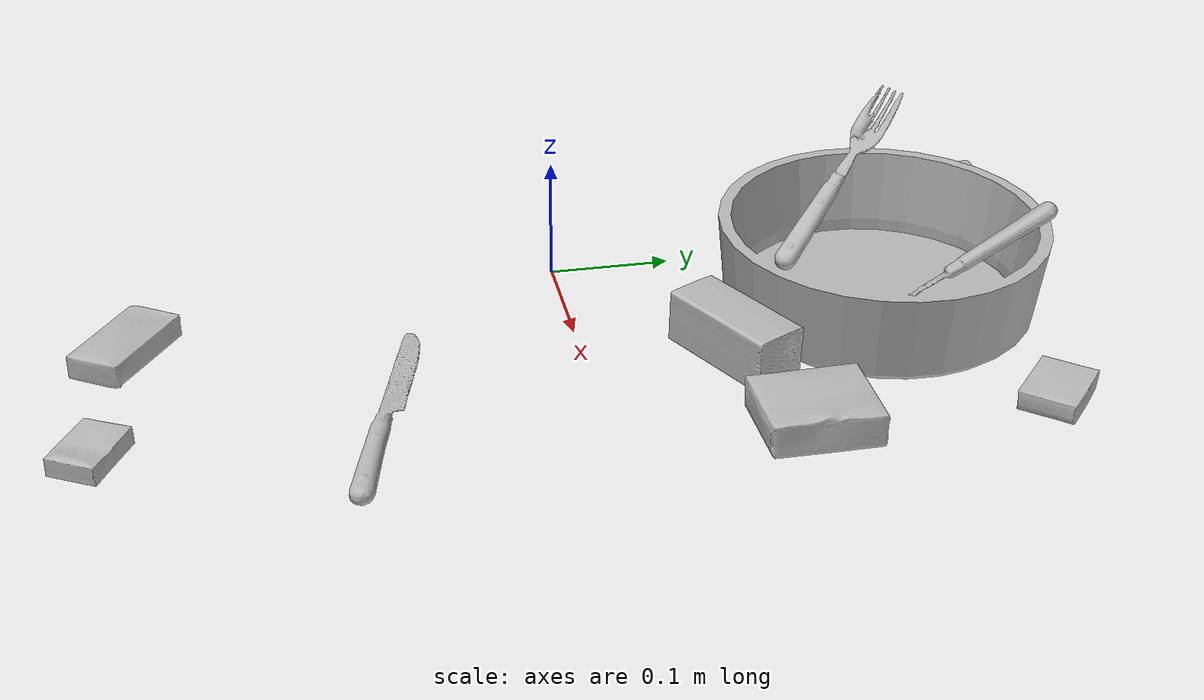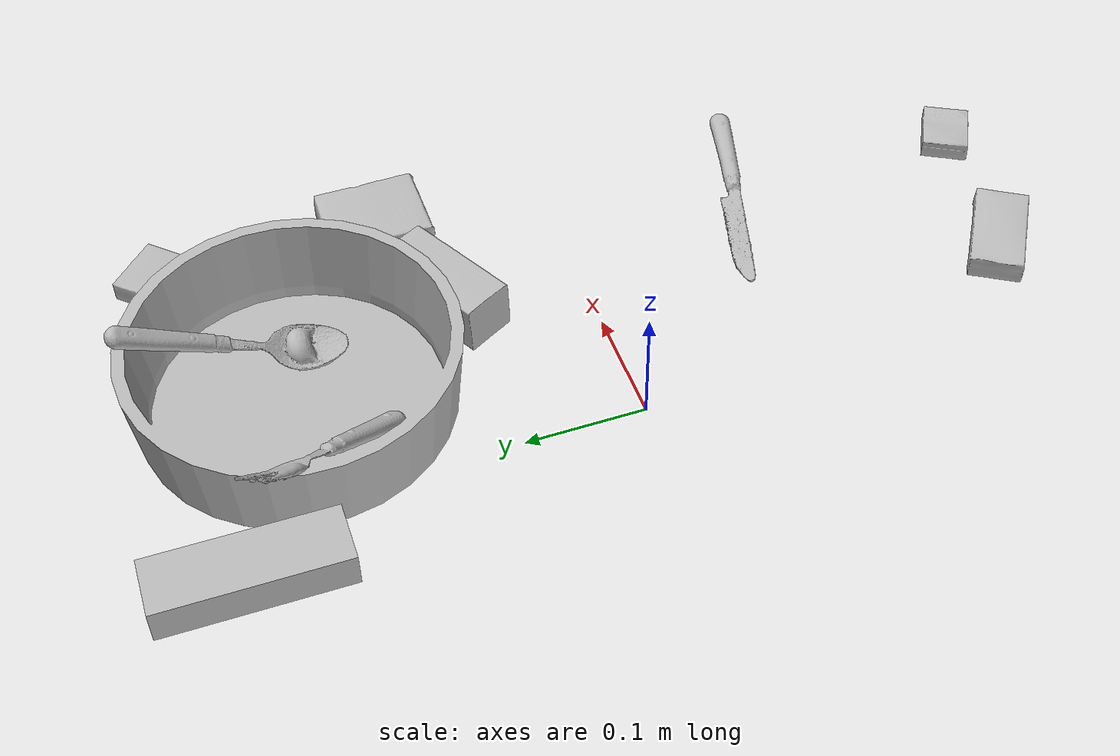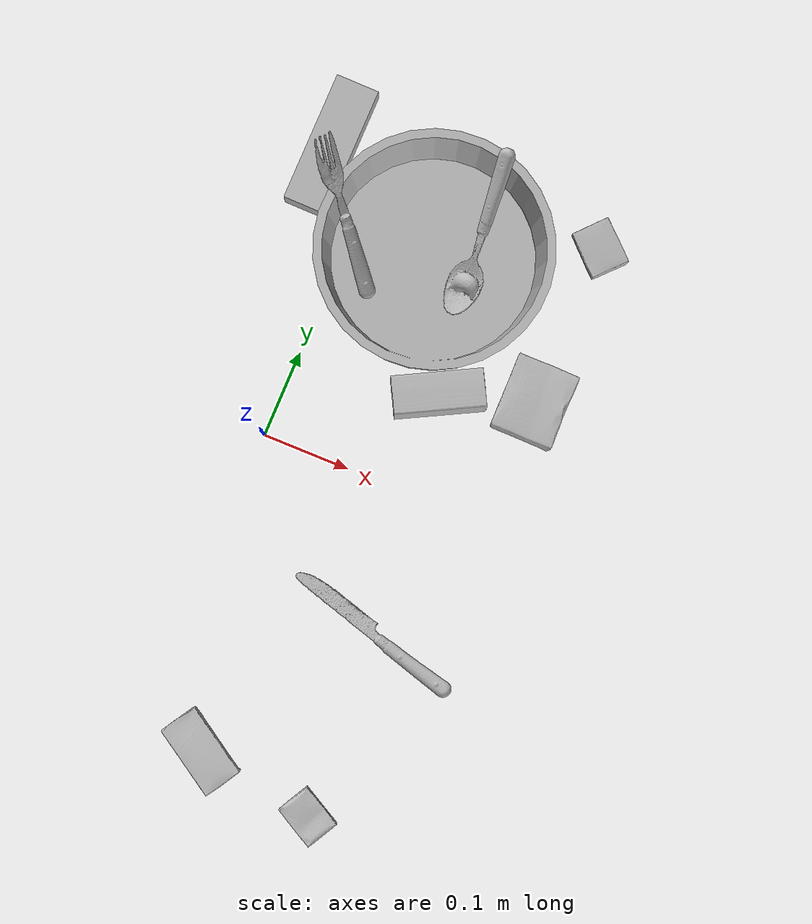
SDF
<sdf version="1.4">
  <world name="default">
    <light name="light1" type="point">
      <pose>0 0 1 0 0 0</pose>
      <diffuse>3 3 3 1</diffuse>
      <specular>3 3 3 1</specular>
    </light>
    <light name="light2" type="point">
      <pose>0 0.5 2 0 0 0</pose>
      <diffuse>1 1 1 1</diffuse>
      <specular>1 1 1 1</specular>
    </light>
    <light name="light3" type="point">
      <pose>0 0.5 2 0 0 0</pose>
      <diffuse>3 3 3 1</diffuse>
      <specular>3 3 3 1</specular>
    </light>
    <scene>
      <ambient>0.7 0.7 0.7</ambient>
    </scene>
    <model name="box11">
      <link name="link_box11">
        <collision name="default">
          <geometry>
            <mesh>
              <uri>model://sugar_box/collision_meshes/collision.obj</uri>
              <scale>0.5 0.5 0.5</scale>
            </mesh>
          </geometry>
          <surface>
            <friction>
              <ode>
                <mu>0.5</mu>
                <mu2>0.5</mu2>
              </ode>
            </friction>
          <contact>
        <ode>
            <max_vel>0</max_vel>
            <min_depth>0.0001</min_depth>
            <kp>1e8</kp>
        </ode>
    </contact></surface>
        </collision>
        <visual name="default">
          <geometry>
            <mesh>
              <uri>model://sugar_box/visual_meshes/visual.dae</uri>
              <scale>0.5 0.5 0.5</scale>
            </mesh>
          </geometry>
        </visual>
        <inertial>
          <mass>0.0727815181016922</mass>
          <pose>0.0005171863595023751 1.924554817378521e-05 -0.00018182402709499002 -0.0004046263004245651 0.001050663405794887 0.002615379021776999</pose>
          <inertia>
            <ixx>1.5160335e-05</ixx>
            <iyy>4.900132e-05</iyy>
            <izz>5.8660433e-05</izz>
            <ixy>0</ixy>
            <ixz>0</ixz>
            <iyz>0</iyz>
          </inertia>
        </inertial>
      </link>
      <pose>0.07096821069717407 -0.3485614061355591 0.011399306356906891 0.0007754469078779041 -0.023433253304874817 -0.5637827081939736</pose>
    </model>
    <model name="box12">
      <link name="link_box12">
        <collision name="default">
          <geometry>
            <mesh>
              <uri>model://gelatin_box/collision_meshes/collision.obj</uri>
              <scale>1.0 1.0 1.0</scale>
            </mesh>
          </geometry>
          <surface>
            <friction>
              <ode>
                <mu>0.5</mu>
                <mu2>0.5</mu2>
              </ode>
            </friction>
          <contact>
        <ode>
            <max_vel>0</max_vel>
            <min_depth>0.0001</min_depth>
            <kp>1e8</kp>
        </ode>
    </contact></surface>
        </collision>
        <visual name="default">
          <geometry>
            <mesh>
              <uri>model://gelatin_box/visual_meshes/visual.dae</uri>
              <scale>1.0 1.0 1.0</scale>
            </mesh>
          </geometry>
        </visual>
        <inertial>
          <mass>0.2761145234107971</mass>
          <pose>0.000431961816502735 0.00011156871187267825 -0.0003640321083366871 -0.0010503719804291966 -0.004755819155973465 0.01644055947187314</pose>
          <inertia>
            <ixx>0.00019491432</ixx>
            <iyy>0.00013922628</iyy>
            <izz>0.00029670302</izz>
            <ixy>0</ixy>
            <ixz>0</ixz>
            <iyz>0</iyz>
          </inertia>
        </inertial>
      </link>
      <pose>0.26301902532577515 0.14724043011665344 0.015168318524956703 0.005597432323156989 -0.007304502249565299 -0.007365639407504807</pose>
    </model>
    <model name="box13">
      <link name="link_box13">
        <collision name="default">
          <geometry>
            <mesh>
              <uri>model://jenga/collision_meshes/collision.obj</uri>
              <scale>1.0 1.0 1.0</scale>
            </mesh>
          </geometry>
          <surface>
            <friction>
              <ode>
                <mu>0.5</mu>
                <mu2>0.5</mu2>
              </ode>
            </friction>
          <contact>
        <ode>
            <max_vel>0</max_vel>
            <min_depth>0.0001</min_depth>
            <kp>1e8</kp>
        </ode>
    </contact></surface>
        </collision>
        <visual name="default">
          <geometry>
            <mesh>
              <uri>model://jenga/visual_meshes/visual.dae</uri>
              <scale>1.0 1.0 1.0</scale>
            </mesh>
          </geometry>
        </visual>
        <inertial>
          <mass>0.30891793966293335</mass>
          <pose>-2.502855807051674e-07 -0.0001025000965455547 -4.0923401684267446e-05 0.0 -7.34215461761844e-07 0.0</pose>
          <inertia>
            <ixx>8.548509e-05</ixx>
            <iyy>0.00057924463</iyy>
            <izz>0.0006183929</izz>
            <ixy>0</ixy>
            <ixz>0</ixz>
            <iyz>0</iyz>
          </inertia>
        </inertial>
      </link>
      <pose>-0.055723886936903 0.32587870955467224 0.014999998733401299 9.186523651663294e-09 3.0640726787705247e-09 1.559698403922701</pose>
    </model>
    <model name="box21">
      <link name="link_box21">
        <collision name="default">
          <geometry>
            <mesh>
              <uri>model://pudding_box/collision_meshes/collision.obj</uri>
              <scale>0.5 0.5 0.5</scale>
            </mesh>
          </geometry>
          <surface>
            <friction>
              <ode>
                <mu>0.5</mu>
                <mu2>0.5</mu2>
              </ode>
            </friction>
          <contact>
        <ode>
            <max_vel>0</max_vel>
            <min_depth>0.0001</min_depth>
            <kp>1e8</kp>
        </ode>
    </contact></surface>
        </collision>
        <visual name="default">
          <geometry>
            <mesh>
              <uri>model://pudding_box/visual_meshes/visual.dae</uri>
              <scale>0.5 0.5 0.5</scale>
            </mesh>
          </geometry>
        </visual>
        <inertial>
          <mass>0.049023520201444626</mass>
          <pose>0.0002447411243338138 0.00040339428232982755 -0.0002594413817860186 0.005213100395594636 -0.006603798704538055 0.020079825164231697</pose>
          <inertia>
            <ixx>1.3854642e-05</ixx>
            <iyy>9.321502e-06</iyy>
            <izz>2.046e-05</izz>
            <ixy>0</ixy>
            <ixz>0</ixz>
            <iyz>0</iyz>
          </inertia>
        </inertial>
      </link>
      <pose>0.26499977707862854 0.3356115520000458 0.009862902574241161 0.02234870986086218 -0.011391588848299265 0.8235599586492793</pose>
    </model>
    <model name="box22">
      <link name="link_box22">
        <collision name="default">
          <geometry>
            <mesh>
              <uri>model://wood_block/collision_meshes/collision.obj</uri>
              <scale>0.5 0.5 0.5</scale>
            </mesh>
          </geometry>
          <surface>
            <friction>
              <ode>
                <mu>0.5</mu>
                <mu2>0.5</mu2>
              </ode>
            </friction>
          <contact>
        <ode>
            <max_vel>0</max_vel>
            <min_depth>0.0001</min_depth>
            <kp>1e8</kp>
        </ode>
    </contact></surface>
        </collision>
        <visual name="default">
          <geometry>
            <mesh>
              <uri>model://wood_block/visual_meshes/visual.dae</uri>
              <scale>0.5 0.5 0.5</scale>
            </mesh>
          </geometry>
        </visual>
        <inertial>
          <mass>0.3074011206626892</mass>
          <pose>-2.9066577553749084e-06 -0.000285404734313488 0.00013204291462898254 -0.05220975528717129 -0.005192695583989696 -0.0068613793241849635</pose>
          <inertia>
            <ixx>0.00010283729</ixx>
            <iyy>0.00032486304</iyy>
            <izz>0.0003236479</izz>
            <ixy>0</ixy>
            <ixz>0</ixz>
            <iyz>0</iyz>
          </inertia>
        </inertial>
      </link>
      <pose>0.1611311435699463 0.11453694850206375 0.022307951003313065 -0.02168521598446445 0.005872173116269504 0.48534210777680986</pose>
    </model>
    <model name="box23">
      <link name="link_box23">
        <collision name="default">
          <geometry>
            <mesh>
              <uri>model://cracker_box/collision_meshes/collision.obj</uri>
              <scale>0.25 0.25 0.25</scale>
            </mesh>
          </geometry>
          <surface>
            <friction>
              <ode>
                <mu>0.5</mu>
                <mu2>0.5</mu2>
              </ode>
            </friction>
          <contact>
        <ode>
            <max_vel>0</max_vel>
            <min_depth>0.0001</min_depth>
            <kp>1e8</kp>
        </ode>
    </contact></surface>
        </collision>
        <visual name="default">
          <geometry>
            <mesh>
              <uri>model://cracker_box/visual_meshes/visual.dae</uri>
              <scale>0.25 0.25 0.25</scale>
            </mesh>
          </geometry>
        </visual>
        <inertial>
          <mass>0.04833315312862396</mass>
          <pose>0.00023660357692278922 6.358561950037256e-05 -0.00042573834070935845 -0.0003162077466025917 -0.011106490531569568 0.002546795235651085</pose>
          <inertia>
            <ixx>7.683624e-06</ixx>
            <iyy>1.268717e-05</iyy>
            <izz>1.8105757e-05</izz>
            <ixy>0</ixy>
            <ixz>0</ixz>
            <iyz>0</iyz>
          </inertia>
        </inertial>
      </link>
      <pose>0.20699334144592285 -0.3696001172065735 0.009120447561144829 -0.011787945403459156 -0.007367176804152683 2.6383755418669237</pose>
    </model>
    <model name="plate1">
      <link name="link_plate1">
        <collision name="default">
          <geometry>
            <mesh>
              <uri>model://pan_tefal/collision_meshes/collision.obj</uri>
              <scale>1.0 1.0 1.0</scale>
            </mesh>
          </geometry>
          <surface>
            <friction>
              <ode>
                <mu>0.5</mu>
                <mu2>0.5</mu2>
              </ode>
            </friction>
          <contact>
        <ode>
            <max_vel>0</max_vel>
            <min_depth>0.0001</min_depth>
            <kp>1e8</kp>
        </ode>
    </contact></surface>
        </collision>
        <visual name="default">
          <geometry>
            <mesh>
              <uri>model://pan_tefal/visual_meshes/visual.dae</uri>
              <scale>1.0 1.0 1.0</scale>
            </mesh>
          </geometry>
        </visual>
        <inertial>
          <mass>1.5598481893539429</mass>
          <pose>-0.0001800245518097654 3.279111842857674e-05 -0.008514934219419956 0.0008190275877392404 -0.0003301333888364595 -0.33185859522575717</pose>
          <inertia>
            <ixx>0.010767555</ixx>
            <iyy>0.010836974</iyy>
            <izz>0.019820997</izz>
            <ixy>0</ixy>
            <ixz>0</ixz>
            <iyz>0</iyz>
          </inertia>
        </inertial>
      </link>
      <pose>0.09757266193628311 0.2532820701599121 0.03804999962449074 -6.4757701075016736e-09 -4.3048903298885094e-08 -1.8163024721956142</pose>
    </model>
    <model name="silverware1">
      <link name="link_silverware1">
        <collision name="default">
          <geometry>
            <mesh>
              <uri>model://fork/collision_meshes/collision.obj</uri>
              <scale>1.0 1.0 1.0</scale>
            </mesh>
          </geometry>
          <surface>
            <friction>
              <ode>
                <mu>0.5</mu>
                <mu2>0.5</mu2>
              </ode>
            </friction>
          <contact>
        <ode>
            <max_vel>0</max_vel>
            <min_depth>0.0001</min_depth>
            <kp>1e8</kp>
        </ode>
    </contact></surface>
        </collision>
        <visual name="default">
          <geometry>
            <mesh>
              <uri>model://fork/visual_meshes/visual.dae</uri>
              <scale>1.0 1.0 1.0</scale>
            </mesh>
          </geometry>
        </visual>
        <inertial>
          <mass>0.024598950520157814</mass>
          <pose>-0.029570043087005615 0.0004658824182115495 0.0003218861820641905 -0.013552328184634912 -0.010977839901754499 0.014453902526732686</pose>
          <inertia>
            <ixx>8.623325e-07</ixx>
            <iyy>6.422079e-05</iyy>
            <izz>6.460647e-05</izz>
            <ixy>0</ixy>
            <ixz>0</ixz>
            <iyz>0</iyz>
          </inertia>
        </inertial>
      </link>
      <pose>-0.006080133840441704 0.25025704503059387 0.061746008694171906 0.38245271641829576 -0.5335020718867908 2.271702813921759</pose>
    </model>
    <model name="silverware2">
      <link name="link_silverware2">
        <collision name="default">
          <geometry>
            <mesh>
              <uri>model://knife/collision_meshes/collision.obj</uri>
              <scale>1.0 1.0 1.0</scale>
            </mesh>
          </geometry>
          <surface>
            <friction>
              <ode>
                <mu>0.5</mu>
                <mu2>0.5</mu2>
              </ode>
            </friction>
          <contact>
        <ode>
            <max_vel>0</max_vel>
            <min_depth>0.0001</min_depth>
            <kp>1e8</kp>
        </ode>
    </contact></surface>
        </collision>
        <visual name="default">
          <geometry>
            <mesh>
              <uri>model://knife/visual_meshes/visual.dae</uri>
              <scale>1.0 1.0 1.0</scale>
            </mesh>
          </geometry>
        </visual>
        <inertial>
          <mass>0.03473280370235443</mass>
          <pose>-0.02378525584936142 0.0015275126788765192 5.062021955382079e-05 0.0730594717304457 0.017248417183571667 -0.007409821049452296</pose>
          <inertia>
            <ixx>9.858578e-07</ixx>
            <iyy>0.00013343782</iyy>
            <izz>0.00013375531</izz>
            <ixy>0</ixy>
            <ixz>0</ixz>
            <iyz>0</iyz>
          </inertia>
        </inertial>
      </link>
      <pose>0.19680339097976685 -0.15609973669052124 0.007946518249809742 -0.023906711183144056 -0.01454251559710831 2.8582305466978677</pose>
    </model>
    <model name="silverware3">
      <link name="link_silverware3">
        <collision name="default">
          <geometry>
            <mesh>
              <uri>model://spoon/collision_meshes/collision.obj</uri>
              <scale>1.0 1.0 1.0</scale>
            </mesh>
          </geometry>
          <surface>
            <friction>
              <ode>
                <mu>0.5</mu>
                <mu2>0.5</mu2>
              </ode>
            </friction>
          <contact>
        <ode>
            <max_vel>0</max_vel>
            <min_depth>0.0001</min_depth>
            <kp>1e8</kp>
        </ode>
    </contact></surface>
        </collision>
        <visual name="default">
          <geometry>
            <mesh>
              <uri>model://spoon/visual_meshes/visual.dae</uri>
              <scale>1.0 1.0 1.0</scale>
            </mesh>
          </geometry>
        </visual>
        <inertial>
          <mass>0.02618301659822464</mass>
          <pose>-0.0055263168178498745 -0.00160341733135283 -0.0007271658978424966 0.035216710647368914 -0.039065848798616645 0.0061506127138874515</pose>
          <inertia>
            <ixx>1.4563418e-06</ixx>
            <iyy>9.96255e-05</iyy>
            <izz>0.000100343714</izz>
            <ixy>0</ixy>
            <ixz>0</ixz>
            <iyz>0</iyz>
          </inertia>
        </inertial>
      </link>
      <pose>0.13896167278289795 0.2944115996360779 0.04702160879969597 0.3047414886706734 0.49415977369150405 -1.5010694699154628</pose>
    </model>
  <physics type="ode">
      <max_contacts>50</max_contacts>
      <ode>
        <solver>
          <type>quick</type>
          <iters>75</iters>
        </solver>
        <constraints>
          <contact_max_correcting_vel>0</contact_max_correcting_vel>
          <contact_surface_layer>0</contact_surface_layer>
        </constraints>
      </ode>
    </physics></world>
</sdf>
